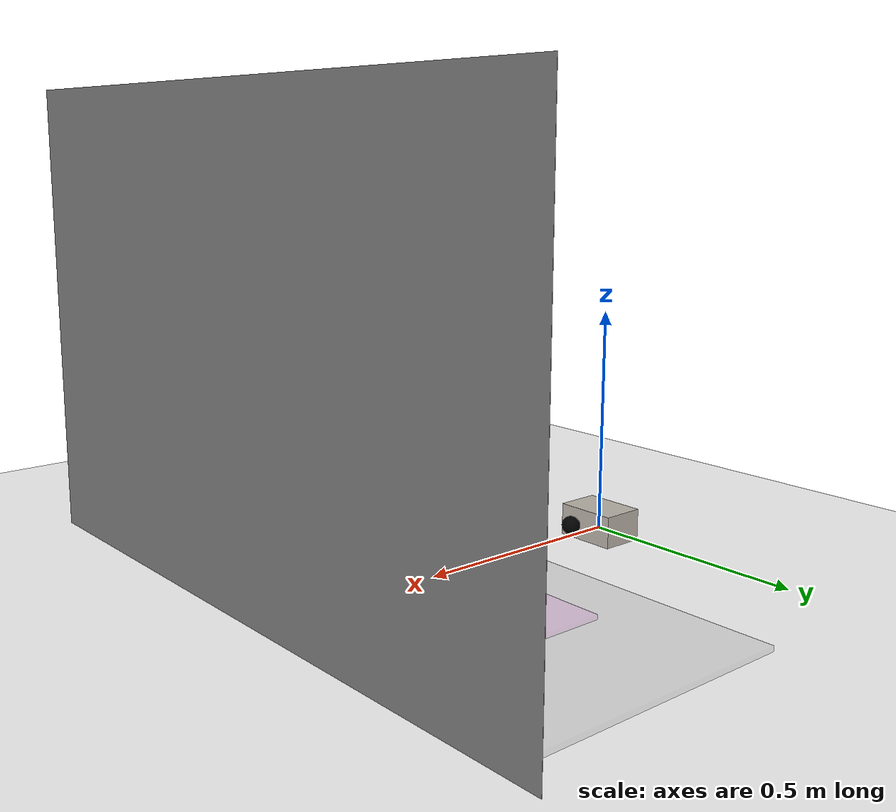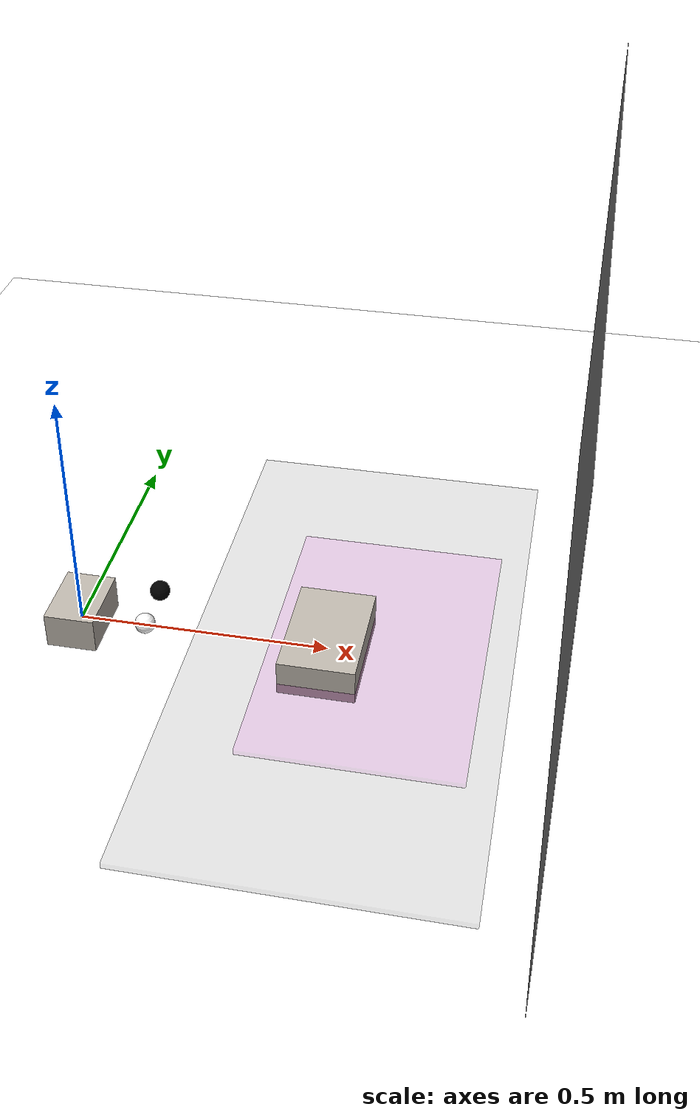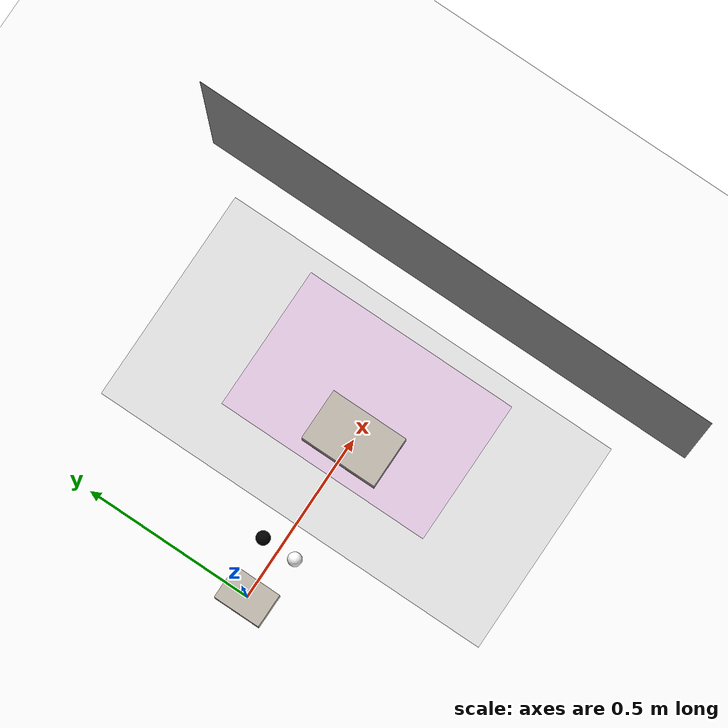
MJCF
<mujoco model="masspoint_scene">
  <statistic center="0.15 0 0" extent="0.4" meansize="0.01"/>

  <option timestep="0.005" iterations="10" ls_iterations="10" integrator="implicitfast">
    <flag eulerdamp="disable"/>
  </option>

  <visual>
    <headlight diffuse=".8 .8 .8" ambient=".2 .2 .2" specular="1 1 1"/>
    <rgba force="1 0 0 1"/>
    <global azimuth="-40" elevation="-30"/>
    <map force="0.01"/>
    <quality shadowsize="8192"/>
    <scale contactwidth="0.075" contactheight="0.025" forcewidth="0.05" com="0.05" framewidth="0.01" framelength="0.2"/>
  </visual>

  <asset>
    <texture name="box" type="cube" fileup="assets/fileup.png" fileback="assets/fileback.png"
      filedown="assets/filedown.png" filefront="assets/filefront.png" fileleft="assets/fileleft.png"
      fileright="assets/fileright.png"/>
    <material name="box" texture="box"/>
    <texture name="box_alpha" type="cube" fileup="assets/fileup_light.png" fileback="assets/fileback_light.png"
      filedown="assets/filedown_light.png" filefront="assets/filefront_light.png" fileleft="assets/fileleft_light.png"
      fileright="assets/fileright_light.png"/>
    <material name="box_alpha" texture="box_alpha"/>
    <texture type="skybox" builtin="gradient" rgb1="1 1 1" rgb2="1 1 1" width="800" height="800"/>
    <texture type="2d" name="groundplane" builtin="checker" mark="edge" rgb1="1 1 1" rgb2="1 1 1" markrgb="0 0 0"
      width="300" height="300"/>
    <material name="groundplane" texture="groundplane" texuniform="true" texrepeat="5 5" reflectance="0"/>
  </asset>

  <default>
    <joint axis="0 1 0" frictionloss="0.0002"/>
  </default>

  <worldbody>
    <camera name="side" pos="-0.183 0.396 0.296" xyaxes="-0.783 -0.622 -0.000 0.332 -0.419 0.845"/>
    <geom name="floor" size="0 0 0.05" type="plane" material="groundplane" contype="1" pos="0 0 -0.0197"/>

    <light pos="0 0 3" dir="0 0 -1" directional="true"/>
    <geom name="wall" size="0.48 0.75 0.05" type="plane" contype="1" pos="0.946 0 0.5" quat="1 0 -1 0"/>
    <geom name="pad" type="box" pos="0.54586 0.02337 -0.02" size="0.315 0.6 0.01" contype="0" conaffinity="0" rgba="0.5 0.5 0.5 0.2"/>
    <geom name="camera_tracking_box" type="box" pos="0.59586 0.02337 -0.02" size="0.21 0.32 0.02" contype="0" conaffinity="0" rgba="0.5 0.0 0.5 0.1"/>
    <body name="box_1" pos="0.5 0 0.0">
      <freejoint name="box_1_joint"/>
      <geom type="box" name="box_1" size="0.07553 0.11482 0.05073" condim="3"
        friction="0.6"  solref="0.02 1" priority="1"
        mass="0.05" material="box"/>
    </body>
    <body mocap="true" name="mocap_target_1">
      <geom type="box" size="0.05 0.07 0.05073" contype="0" conaffinity="0"
       material="box_alpha"/>
    </body>

    <body name="box_2" pos="0.5 0 0.0">
      <freejoint name="box_2_joint"/>
      <geom type="box" name="box_2" size="0.07553 0.11482 0.05073" condim="3"
        friction="0.6"  solref="0.02 1" priority="1"
        mass="0.05" material="box"/>
    </body>
    <body mocap="true" name="mocap_target_2">
      <geom type="box" size="0.05 0.07 0.05073" contype="0" conaffinity="0"
       material="box_alpha"/>
    </body>

    <body name="mp_0" pos="0.15 0.05 0.05">
        <inertial pos="0.0 -0. 0.0" mass=".01" diaginertia="0.001 0.001 0.001"/>
        <joint name="mp_0_joint_0" pos="0.0 0.0 0.0" axis="1 0 0" type="slide" limited="true" range="-0.0 0.8" damping="0.5" frictionloss="0.02"/>
        <joint name="mp_0_joint_1" pos="0.0 0.0 0.0" axis="0 1 0" type="slide" limited="true" range="-0.5 0.5" damping="0.5" frictionloss="0.02"/>
        <joint name="mp_0_joint_2" pos="0.0 0.0 0.0" axis="0 0 1" type="slide" limited="true" springref=".0" range="-0.05 0.05" damping="0.1" frictionloss="0.02"/>
        <geom name="mp_0" rgba="0 0 0 1" pos="0.0 -0.00 0.0" size="0.02 0.01 0.005" type="sphere"/>
        <site name="mp_0_tip" pos="0 0 0.0255" group="4"/>
    </body>

    <body name="mp_1" pos="0.15 -0.05 0.05">
        <inertial pos="0.0 -0.0 0.0" mass=".01" diaginertia="0.001 0.001 0.001"/>
        <joint name="mp_1_joint_0" pos="0.0 0.0 0.0" axis="1 0 0" type="slide" limited="true" range="-0.0 0.8" damping="1"/>
        <joint name="mp_1_joint_1" pos="0.0 0.0 0.0" axis="0 1 0" type="slide" limited="true" range="-0.5 0.5" damping="1"/>
        <joint name="mp_1_joint_2" pos="0.0 0.0 0.0" axis="0 0 1" type="slide" limited="true" range="-0.05 0.05" damping="0.1" springref=".0"/>
        <geom name="mp_1" rgba="1 1 1 1" pos="0.0 -0.00 0.0" size="0.02 0.01 0.005" type="sphere"/>
        <site name="mp_1_tip" pos="0 0 0.0255" group="4"/>
    </body>

  </worldbody>

  <sensor>
    <!-- hand. -->
    <framepos name="mp_0_tip_position" objtype="site" objname="mp_0_tip"/>
    <framepos name="mp_1_tip_position" objtype="site" objname="mp_1_tip"/>
  </sensor>

  <actuator>
    <position kp="3" kv="1" name="mp_0_joint_0_a" joint="mp_0_joint_0" ctrlrange="-0.0 0.8"/>
    <position kp="3" kv="1" name="mp_0_joint_1_a" joint="mp_0_joint_1" ctrlrange="-0.5 0.5"/>
    <position kp="5" kv="1" name="mp_0_joint_2_a" joint="mp_0_joint_2" ctrlrange="-0.05 0.05"/>

    <position kp="3" kv="1" name="mp_1_joint_0_a" joint="mp_1_joint_0" ctrlrange="-0.0 0.8"/>
    <position kp="3" kv="1" name="mp_1_joint_1_a" joint="mp_1_joint_1" ctrlrange="-0.5 0.5"/>
    <position kp="5" kv="1" name="mp_1_joint_2_a" joint="mp_1_joint_2" ctrlrange="-0.05 0.05"/>
  </actuator>

  <keyframe>
    <key name="home"
      qpos="0.56784 -0.153974 0.0306525 0 0 0 0.99882
      0.56784 0.15 0.0306525 0 0 0 0.99882
      0.3 -0.1 0 0.3 0 0"
      ctrl="0.3 -0.1 0 0.3 0 0"/>
  </keyframe>
</mujoco>
